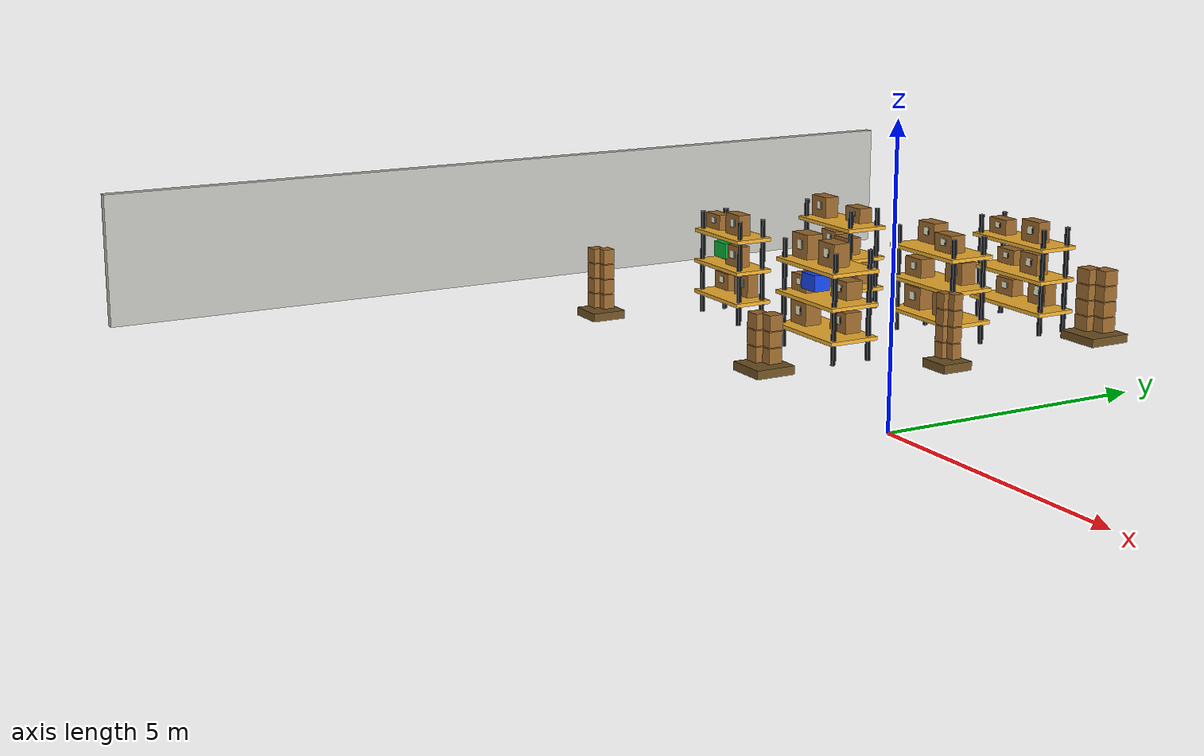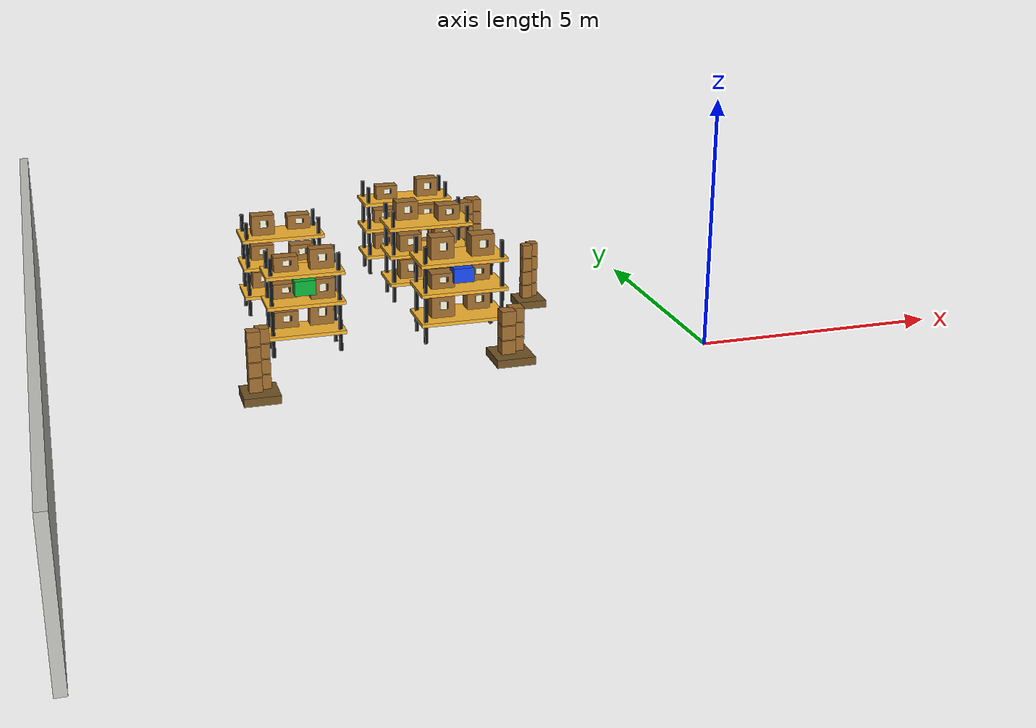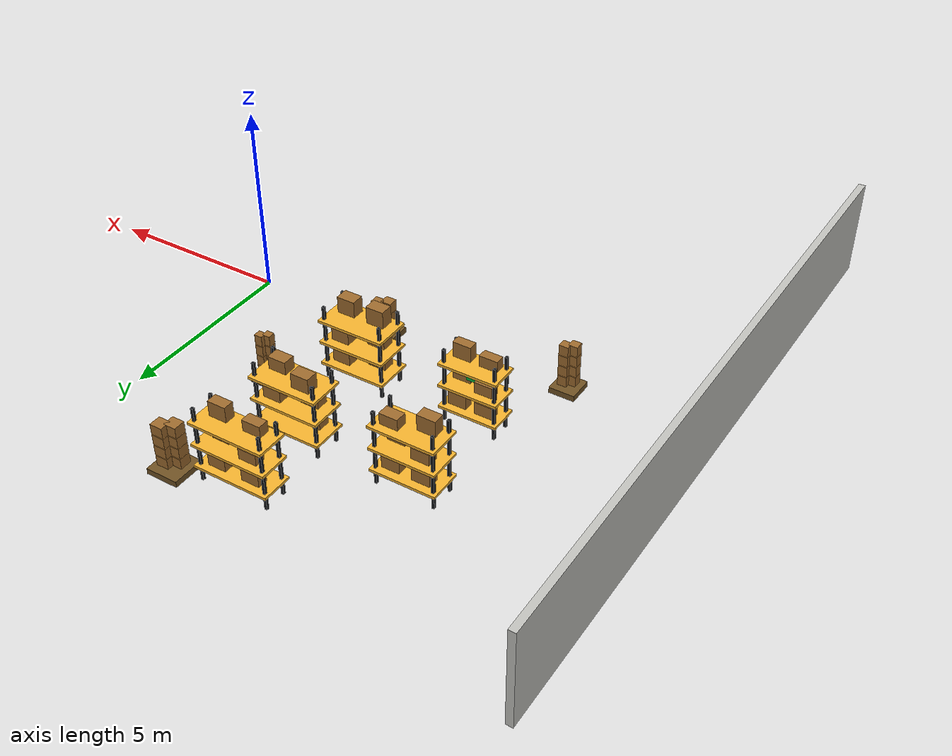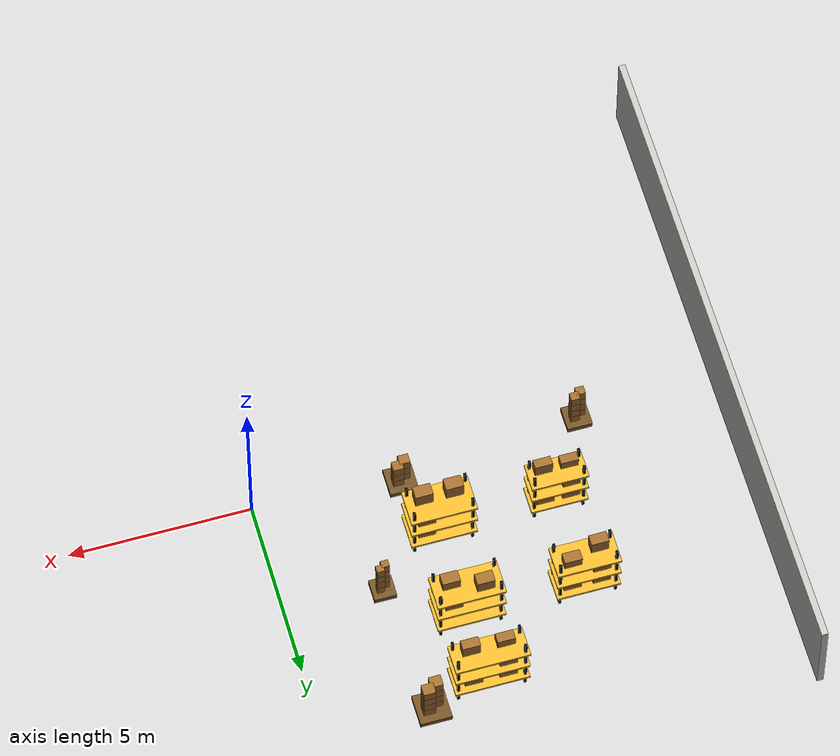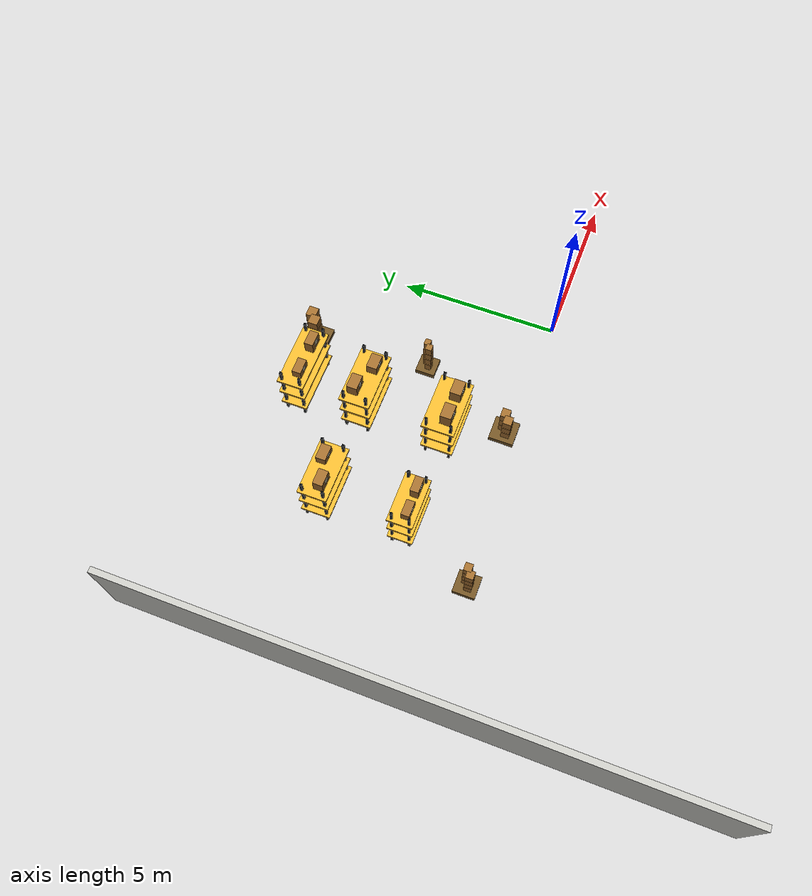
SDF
<sdf version="1.9">
 <world name="lidar_random_warehouse">
  <model name="left_wall">
   <static>true</static>
   <pose>-12.910 0.000 1.300 0 0 0</pose>
   <link name="link">
    <collision name="collision"><geometry><box><size>0.180 18.000 2.600</size></box></geometry></collision>
    <visual name="visual">
     <geometry><box><size>0.180 18.000 2.600</size></box></geometry>
     <material><ambient>0.66 0.66 0.64 1</ambient><diffuse>0.76 0.76 0.74 1</diffuse></material>
    </visual>
   </link>
  </model>
  <model name="shelf_14">
   <static>true</static>
   <pose>-7.800 2.000 0 0 0 0</pose>
   <link name="link">
    <collision name="collision">
     <pose>0 0 1.025 0 0 0</pose>
     <geometry><box><size>1.420 0.597 2.050</size></box></geometry>
    </collision>
    <visual name="post_0">
     <pose>-0.675 -0.264 1.025 0 0 0</pose>
     <geometry><box><size>0.070 0.070 2.050</size></box></geometry>
     <material><ambient>0.03 0.04 0.05 1</ambient><diffuse>0.05 0.06 0.07 1</diffuse></material>
    </visual>
    <visual name="post_1">
     <pose>-0.675 0.264 1.025 0 0 0</pose>
     <geometry><box><size>0.070 0.070 2.050</size></box></geometry>
     <material><ambient>0.03 0.04 0.05 1</ambient><diffuse>0.05 0.06 0.07 1</diffuse></material>
    </visual>
    <visual name="post_2">
     <pose>0.675 -0.264 1.025 0 0 0</pose>
     <geometry><box><size>0.070 0.070 2.050</size></box></geometry>
     <material><ambient>0.03 0.04 0.05 1</ambient><diffuse>0.05 0.06 0.07 1</diffuse></material>
    </visual>
    <visual name="post_3">
     <pose>0.675 0.264 1.025 0 0 0</pose>
     <geometry><box><size>0.070 0.070 2.050</size></box></geometry>
     <material><ambient>0.03 0.04 0.05 1</ambient><diffuse>0.05 0.06 0.07 1</diffuse></material>
    </visual>
    <visual name="deck_1">
     <pose>0.000 0.000 0.420 0 0 0</pose>
     <geometry><box><size>1.560 0.777 0.070</size></box></geometry>
     <material><ambient>0.70 0.52 0.18 1</ambient><diffuse>0.96 0.70 0.18 1</diffuse></material>
    </visual>
    <visual name="box_1_-0.4">
     <pose>-0.355 0.107 0.666 0 0 0</pose>
     <geometry><box><size>0.480 0.251 0.333</size></box></geometry>
     <material><ambient>0.44 0.28 0.11 1</ambient><diffuse>0.62 0.42 0.18 1</diffuse></material>
    </visual>
    <visual name="label_1_-0.4">
     <pose>-0.355 -0.022 0.693 0 0 0</pose>
     <geometry><box><size>0.134 0.012 0.126</size></box></geometry>
     <material><ambient>0.86 0.86 0.76 1</ambient><diffuse>0.98 0.96 0.84 1</diffuse></material>
    </visual>
    <visual name="barcode_1_-0.4">
     <pose>-0.269 -0.026 0.693 0 0 0</pose>
     <geometry><box><size>0.029 0.014 0.113</size></box></geometry>
     <material><ambient>0.02 0.02 0.02 1</ambient><diffuse>0.02 0.02 0.02 1</diffuse></material>
    </visual>
    <visual name="box_1_0.4">
     <pose>0.355 0.107 0.736 0 0 0</pose>
     <geometry><box><size>0.480 0.251 0.472</size></box></geometry>
     <material><ambient>0.44 0.28 0.11 1</ambient><diffuse>0.62 0.42 0.18 1</diffuse></material>
    </visual>
    <visual name="label_1_0.4">
     <pose>0.355 -0.022 0.765 0 0 0</pose>
     <geometry><box><size>0.134 0.012 0.179</size></box></geometry>
     <material><ambient>0.86 0.86 0.76 1</ambient><diffuse>0.98 0.96 0.84 1</diffuse></material>
    </visual>
    <visual name="barcode_1_0.4">
     <pose>0.441 -0.026 0.765 0 0 0</pose>
     <geometry><box><size>0.029 0.014 0.160</size></box></geometry>
     <material><ambient>0.02 0.02 0.02 1</ambient><diffuse>0.02 0.02 0.02 1</diffuse></material>
    </visual>
    <visual name="deck_2">
     <pose>0.000 0.000 1.040 0 0 0</pose>
     <geometry><box><size>1.560 0.777 0.070</size></box></geometry>
     <material><ambient>0.70 0.52 0.18 1</ambient><diffuse>0.96 0.70 0.18 1</diffuse></material>
    </visual>
    <visual name="box_2_-0.4">
     <pose>-0.355 0.107 1.268 0 0 0</pose>
     <geometry><box><size>0.480 0.251 0.295</size></box></geometry>
     <material><ambient>0.44 0.28 0.11 1</ambient><diffuse>0.62 0.42 0.18 1</diffuse></material>
    </visual>
    <visual name="label_2_-0.4">
     <pose>-0.355 -0.022 1.293 0 0 0</pose>
     <geometry><box><size>0.134 0.012 0.112</size></box></geometry>
     <material><ambient>0.86 0.86 0.76 1</ambient><diffuse>0.98 0.96 0.84 1</diffuse></material>
    </visual>
    <visual name="barcode_2_-0.4">
     <pose>-0.269 -0.026 1.293 0 0 0</pose>
     <geometry><box><size>0.029 0.014 0.100</size></box></geometry>
     <material><ambient>0.02 0.02 0.02 1</ambient><diffuse>0.02 0.02 0.02 1</diffuse></material>
    </visual>
    <visual name="box_2_0.4">
     <pose>0.355 -0.107 1.324 0 0 0</pose>
     <geometry><box><size>0.480 0.251 0.407</size></box></geometry>
     <material><ambient>0.44 0.28 0.11 1</ambient><diffuse>0.62 0.42 0.18 1</diffuse></material>
    </visual>
    <visual name="label_2_0.4">
     <pose>0.355 -0.237 1.352 0 0 0</pose>
     <geometry><box><size>0.134 0.012 0.155</size></box></geometry>
     <material><ambient>0.86 0.86 0.76 1</ambient><diffuse>0.98 0.96 0.84 1</diffuse></material>
    </visual>
    <visual name="barcode_2_0.4">
     <pose>0.441 -0.241 1.352 0 0 0</pose>
     <geometry><box><size>0.029 0.014 0.138</size></box></geometry>
     <material><ambient>0.02 0.02 0.02 1</ambient><diffuse>0.02 0.02 0.02 1</diffuse></material>
    </visual>
    <visual name="deck_3">
     <pose>0.000 0.000 1.660 0 0 0</pose>
     <geometry><box><size>1.560 0.777 0.070</size></box></geometry>
     <material><ambient>0.70 0.52 0.18 1</ambient><diffuse>0.96 0.70 0.18 1</diffuse></material>
    </visual>
    <visual name="box_3_-0.4">
     <pose>-0.355 -0.107 1.889 0 0 0</pose>
     <geometry><box><size>0.480 0.251 0.297</size></box></geometry>
     <material><ambient>0.44 0.28 0.11 1</ambient><diffuse>0.62 0.42 0.18 1</diffuse></material>
    </visual>
    <visual name="label_3_-0.4">
     <pose>-0.355 -0.237 1.914 0 0 0</pose>
     <geometry><box><size>0.134 0.012 0.113</size></box></geometry>
     <material><ambient>0.86 0.86 0.76 1</ambient><diffuse>0.98 0.96 0.84 1</diffuse></material>
    </visual>
    <visual name="barcode_3_-0.4">
     <pose>-0.269 -0.241 1.914 0 0 0</pose>
     <geometry><box><size>0.029 0.014 0.101</size></box></geometry>
     <material><ambient>0.02 0.02 0.02 1</ambient><diffuse>0.02 0.02 0.02 1</diffuse></material>
    </visual>
    <visual name="box_3_0.4">
     <pose>0.355 -0.107 1.944 0 0 0</pose>
     <geometry><box><size>0.480 0.251 0.408</size></box></geometry>
     <material><ambient>0.44 0.28 0.11 1</ambient><diffuse>0.62 0.42 0.18 1</diffuse></material>
    </visual>
    <visual name="label_3_0.4">
     <pose>0.355 -0.237 1.972 0 0 0</pose>
     <geometry><box><size>0.134 0.012 0.155</size></box></geometry>
     <material><ambient>0.86 0.86 0.76 1</ambient><diffuse>0.98 0.96 0.84 1</diffuse></material>
    </visual>
    <visual name="barcode_3_0.4">
     <pose>0.441 -0.241 1.972 0 0 0</pose>
     <geometry><box><size>0.029 0.014 0.139</size></box></geometry>
     <material><ambient>0.02 0.02 0.02 1</ambient><diffuse>0.02 0.02 0.02 1</diffuse></material>
    </visual>
   </link>
  </model>
  <model name="shelf_15">
   <static>true</static>
   <pose>-4.600 2.000 0 0 0 0</pose>
   <link name="link">
    <collision name="collision">
     <pose>0 0 1.025 0 0 0</pose>
     <geometry><box><size>1.666 0.830 2.050</size></box></geometry>
    </collision>
    <visual name="post_0">
     <pose>-0.798 -0.380 1.025 0 0 0</pose>
     <geometry><box><size>0.070 0.070 2.050</size></box></geometry>
     <material><ambient>0.03 0.04 0.05 1</ambient><diffuse>0.05 0.06 0.07 1</diffuse></material>
    </visual>
    <visual name="post_1">
     <pose>-0.798 0.380 1.025 0 0 0</pose>
     <geometry><box><size>0.070 0.070 2.050</size></box></geometry>
     <material><ambient>0.03 0.04 0.05 1</ambient><diffuse>0.05 0.06 0.07 1</diffuse></material>
    </visual>
    <visual name="post_2">
     <pose>0.798 -0.380 1.025 0 0 0</pose>
     <geometry><box><size>0.070 0.070 2.050</size></box></geometry>
     <material><ambient>0.03 0.04 0.05 1</ambient><diffuse>0.05 0.06 0.07 1</diffuse></material>
    </visual>
    <visual name="post_3">
     <pose>0.798 0.380 1.025 0 0 0</pose>
     <geometry><box><size>0.070 0.070 2.050</size></box></geometry>
     <material><ambient>0.03 0.04 0.05 1</ambient><diffuse>0.05 0.06 0.07 1</diffuse></material>
    </visual>
    <visual name="deck_1">
     <pose>0.000 0.000 0.420 0 0 0</pose>
     <geometry><box><size>1.806 1.010 0.070</size></box></geometry>
     <material><ambient>0.70 0.52 0.18 1</ambient><diffuse>0.96 0.70 0.18 1</diffuse></material>
    </visual>
    <visual name="box_1_-0.4">
     <pose>-0.417 -0.149 0.728 0 0 0</pose>
     <geometry><box><size>0.480 0.340 0.455</size></box></geometry>
     <material><ambient>0.44 0.28 0.11 1</ambient><diffuse>0.62 0.42 0.18 1</diffuse></material>
    </visual>
    <visual name="label_1_-0.4">
     <pose>-0.417 -0.323 0.757 0 0 0</pose>
     <geometry><box><size>0.134 0.012 0.173</size></box></geometry>
     <material><ambient>0.86 0.86 0.76 1</ambient><diffuse>0.98 0.96 0.84 1</diffuse></material>
    </visual>
    <visual name="barcode_1_-0.4">
     <pose>-0.330 -0.327 0.757 0 0 0</pose>
     <geometry><box><size>0.029 0.014 0.155</size></box></geometry>
     <material><ambient>0.02 0.02 0.02 1</ambient><diffuse>0.02 0.02 0.02 1</diffuse></material>
    </visual>
    <visual name="box_1_0.4">
     <pose>0.417 0.149 0.692 0 0 0</pose>
     <geometry><box><size>0.480 0.340 0.384</size></box></geometry>
     <material><ambient>0.44 0.28 0.11 1</ambient><diffuse>0.62 0.42 0.18 1</diffuse></material>
    </visual>
    <visual name="label_1_0.4">
     <pose>0.417 -0.025 0.720 0 0 0</pose>
     <geometry><box><size>0.134 0.012 0.146</size></box></geometry>
     <material><ambient>0.86 0.86 0.76 1</ambient><diffuse>0.98 0.96 0.84 1</diffuse></material>
    </visual>
    <visual name="barcode_1_0.4">
     <pose>0.503 -0.029 0.720 0 0 0</pose>
     <geometry><box><size>0.029 0.014 0.130</size></box></geometry>
     <material><ambient>0.02 0.02 0.02 1</ambient><diffuse>0.02 0.02 0.02 1</diffuse></material>
    </visual>
    <visual name="deck_2">
     <pose>0.000 0.000 1.040 0 0 0</pose>
     <geometry><box><size>1.806 1.010 0.070</size></box></geometry>
     <material><ambient>0.70 0.52 0.18 1</ambient><diffuse>0.96 0.70 0.18 1</diffuse></material>
    </visual>
    <visual name="box_2_-0.4">
     <pose>-0.417 -0.149 1.276 0 0 0</pose>
     <geometry><box><size>0.480 0.340 0.312</size></box></geometry>
     <material><ambient>0.44 0.28 0.11 1</ambient><diffuse>0.62 0.42 0.18 1</diffuse></material>
    </visual>
    <visual name="label_2_-0.4">
     <pose>-0.417 -0.323 1.302 0 0 0</pose>
     <geometry><box><size>0.134 0.012 0.118</size></box></geometry>
     <material><ambient>0.86 0.86 0.76 1</ambient><diffuse>0.98 0.96 0.84 1</diffuse></material>
    </visual>
    <visual name="barcode_2_-0.4">
     <pose>-0.330 -0.327 1.302 0 0 0</pose>
     <geometry><box><size>0.029 0.014 0.106</size></box></geometry>
     <material><ambient>0.02 0.02 0.02 1</ambient><diffuse>0.02 0.02 0.02 1</diffuse></material>
    </visual>
    <visual name="box_2_0.4">
     <pose>0.417 0.149 1.289 0 0 0</pose>
     <geometry><box><size>0.480 0.340 0.337</size></box></geometry>
     <material><ambient>0.44 0.28 0.11 1</ambient><diffuse>0.62 0.42 0.18 1</diffuse></material>
    </visual>
    <visual name="label_2_0.4">
     <pose>0.417 -0.025 1.315 0 0 0</pose>
     <geometry><box><size>0.134 0.012 0.128</size></box></geometry>
     <material><ambient>0.86 0.86 0.76 1</ambient><diffuse>0.98 0.96 0.84 1</diffuse></material>
    </visual>
    <visual name="barcode_2_0.4">
     <pose>0.503 -0.029 1.315 0 0 0</pose>
     <geometry><box><size>0.029 0.014 0.115</size></box></geometry>
     <material><ambient>0.02 0.02 0.02 1</ambient><diffuse>0.02 0.02 0.02 1</diffuse></material>
    </visual>
    <visual name="deck_3">
     <pose>0.000 0.000 1.660 0 0 0</pose>
     <geometry><box><size>1.806 1.010 0.070</size></box></geometry>
     <material><ambient>0.70 0.52 0.18 1</ambient><diffuse>0.96 0.70 0.18 1</diffuse></material>
    </visual>
    <visual name="box_3_-0.4">
     <pose>-0.417 -0.149 1.969 0 0 0</pose>
     <geometry><box><size>0.480 0.340 0.458</size></box></geometry>
     <material><ambient>0.44 0.28 0.11 1</ambient><diffuse>0.62 0.42 0.18 1</diffuse></material>
    </visual>
    <visual name="label_3_-0.4">
     <pose>-0.417 -0.323 1.998 0 0 0</pose>
     <geometry><box><size>0.134 0.012 0.174</size></box></geometry>
     <material><ambient>0.86 0.86 0.76 1</ambient><diffuse>0.98 0.96 0.84 1</diffuse></material>
    </visual>
    <visual name="barcode_3_-0.4">
     <pose>-0.330 -0.327 1.998 0 0 0</pose>
     <geometry><box><size>0.029 0.014 0.156</size></box></geometry>
     <material><ambient>0.02 0.02 0.02 1</ambient><diffuse>0.02 0.02 0.02 1</diffuse></material>
    </visual>
    <visual name="box_3_0.4">
     <pose>0.417 -0.149 1.958 0 0 0</pose>
     <geometry><box><size>0.480 0.340 0.436</size></box></geometry>
     <material><ambient>0.44 0.28 0.11 1</ambient><diffuse>0.62 0.42 0.18 1</diffuse></material>
    </visual>
    <visual name="label_3_0.4">
     <pose>0.417 -0.323 1.987 0 0 0</pose>
     <geometry><box><size>0.134 0.012 0.166</size></box></geometry>
     <material><ambient>0.86 0.86 0.76 1</ambient><diffuse>0.98 0.96 0.84 1</diffuse></material>
    </visual>
    <visual name="barcode_3_0.4">
     <pose>0.503 -0.327 1.987 0 0 0</pose>
     <geometry><box><size>0.029 0.014 0.148</size></box></geometry>
     <material><ambient>0.02 0.02 0.02 1</ambient><diffuse>0.02 0.02 0.02 1</diffuse></material>
    </visual>
   </link>
  </model>
  <model name="shelf_18">
   <static>true</static>
   <pose>-7.800 4.600 0 0 0 0</pose>
   <link name="link">
    <collision name="collision">
     <pose>0 0 1.025 0 0 0</pose>
     <geometry><box><size>1.598 0.715 2.050</size></box></geometry>
    </collision>
    <visual name="post_0">
     <pose>-0.764 -0.322 1.025 0 0 0</pose>
     <geometry><box><size>0.070 0.070 2.050</size></box></geometry>
     <material><ambient>0.03 0.04 0.05 1</ambient><diffuse>0.05 0.06 0.07 1</diffuse></material>
    </visual>
    <visual name="post_1">
     <pose>-0.764 0.322 1.025 0 0 0</pose>
     <geometry><box><size>0.070 0.070 2.050</size></box></geometry>
     <material><ambient>0.03 0.04 0.05 1</ambient><diffuse>0.05 0.06 0.07 1</diffuse></material>
    </visual>
    <visual name="post_2">
     <pose>0.764 -0.322 1.025 0 0 0</pose>
     <geometry><box><size>0.070 0.070 2.050</size></box></geometry>
     <material><ambient>0.03 0.04 0.05 1</ambient><diffuse>0.05 0.06 0.07 1</diffuse></material>
    </visual>
    <visual name="post_3">
     <pose>0.764 0.322 1.025 0 0 0</pose>
     <geometry><box><size>0.070 0.070 2.050</size></box></geometry>
     <material><ambient>0.03 0.04 0.05 1</ambient><diffuse>0.05 0.06 0.07 1</diffuse></material>
    </visual>
    <visual name="deck_1">
     <pose>0.000 0.000 0.420 0 0 0</pose>
     <geometry><box><size>1.738 0.895 0.070</size></box></geometry>
     <material><ambient>0.70 0.52 0.18 1</ambient><diffuse>0.96 0.70 0.18 1</diffuse></material>
    </visual>
    <visual name="box_1_-0.4">
     <pose>-0.399 0.129 0.670 0 0 0</pose>
     <geometry><box><size>0.480 0.300 0.341</size></box></geometry>
     <material><ambient>0.44 0.28 0.11 1</ambient><diffuse>0.62 0.42 0.18 1</diffuse></material>
    </visual>
    <visual name="label_1_-0.4">
     <pose>-0.399 -0.025 0.697 0 0 0</pose>
     <geometry><box><size>0.134 0.012 0.129</size></box></geometry>
     <material><ambient>0.86 0.86 0.76 1</ambient><diffuse>0.98 0.96 0.84 1</diffuse></material>
    </visual>
    <visual name="barcode_1_-0.4">
     <pose>-0.313 -0.029 0.697 0 0 0</pose>
     <geometry><box><size>0.029 0.014 0.116</size></box></geometry>
     <material><ambient>0.02 0.02 0.02 1</ambient><diffuse>0.02 0.02 0.02 1</diffuse></material>
    </visual>
    <visual name="box_1_0.4">
     <pose>0.399 0.129 0.737 0 0 0</pose>
     <geometry><box><size>0.480 0.300 0.474</size></box></geometry>
     <material><ambient>0.44 0.28 0.11 1</ambient><diffuse>0.62 0.42 0.18 1</diffuse></material>
    </visual>
    <visual name="label_1_0.4">
     <pose>0.399 -0.025 0.766 0 0 0</pose>
     <geometry><box><size>0.134 0.012 0.180</size></box></geometry>
     <material><ambient>0.86 0.86 0.76 1</ambient><diffuse>0.98 0.96 0.84 1</diffuse></material>
    </visual>
    <visual name="barcode_1_0.4">
     <pose>0.486 -0.029 0.766 0 0 0</pose>
     <geometry><box><size>0.029 0.014 0.161</size></box></geometry>
     <material><ambient>0.02 0.02 0.02 1</ambient><diffuse>0.02 0.02 0.02 1</diffuse></material>
    </visual>
    <visual name="deck_2">
     <pose>0.000 0.000 1.040 0 0 0</pose>
     <geometry><box><size>1.738 0.895 0.070</size></box></geometry>
     <material><ambient>0.70 0.52 0.18 1</ambient><diffuse>0.96 0.70 0.18 1</diffuse></material>
    </visual>
    <visual name="box_2_-0.4">
     <pose>-0.399 0.129 1.276 0 0 0</pose>
     <geometry><box><size>0.480 0.300 0.312</size></box></geometry>
     <material><ambient>0.44 0.28 0.11 1</ambient><diffuse>0.62 0.42 0.18 1</diffuse></material>
    </visual>
    <visual name="label_2_-0.4">
     <pose>-0.399 -0.025 1.302 0 0 0</pose>
     <geometry><box><size>0.134 0.012 0.118</size></box></geometry>
     <material><ambient>0.86 0.86 0.76 1</ambient><diffuse>0.98 0.96 0.84 1</diffuse></material>
    </visual>
    <visual name="barcode_2_-0.4">
     <pose>-0.313 -0.029 1.302 0 0 0</pose>
     <geometry><box><size>0.029 0.014 0.106</size></box></geometry>
     <material><ambient>0.02 0.02 0.02 1</ambient><diffuse>0.02 0.02 0.02 1</diffuse></material>
    </visual>
    <visual name="box_2_0.4">
     <pose>0.399 -0.129 1.289 0 0 0</pose>
     <geometry><box><size>0.480 0.300 0.338</size></box></geometry>
     <material><ambient>0.44 0.28 0.11 1</ambient><diffuse>0.62 0.42 0.18 1</diffuse></material>
    </visual>
    <visual name="label_2_0.4">
     <pose>0.399 -0.283 1.316 0 0 0</pose>
     <geometry><box><size>0.134 0.012 0.128</size></box></geometry>
     <material><ambient>0.86 0.86 0.76 1</ambient><diffuse>0.98 0.96 0.84 1</diffuse></material>
    </visual>
    <visual name="barcode_2_0.4">
     <pose>0.486 -0.287 1.316 0 0 0</pose>
     <geometry><box><size>0.029 0.014 0.115</size></box></geometry>
     <material><ambient>0.02 0.02 0.02 1</ambient><diffuse>0.02 0.02 0.02 1</diffuse></material>
    </visual>
    <visual name="deck_3">
     <pose>0.000 0.000 1.660 0 0 0</pose>
     <geometry><box><size>1.738 0.895 0.070</size></box></geometry>
     <material><ambient>0.70 0.52 0.18 1</ambient><diffuse>0.96 0.70 0.18 1</diffuse></material>
    </visual>
    <visual name="box_3_-0.4">
     <pose>-0.399 -0.129 1.951 0 0 0</pose>
     <geometry><box><size>0.480 0.300 0.422</size></box></geometry>
     <material><ambient>0.44 0.28 0.11 1</ambient><diffuse>0.62 0.42 0.18 1</diffuse></material>
    </visual>
    <visual name="label_3_-0.4">
     <pose>-0.399 -0.283 1.979 0 0 0</pose>
     <geometry><box><size>0.134 0.012 0.160</size></box></geometry>
     <material><ambient>0.86 0.86 0.76 1</ambient><diffuse>0.98 0.96 0.84 1</diffuse></material>
    </visual>
    <visual name="barcode_3_-0.4">
     <pose>-0.313 -0.287 1.979 0 0 0</pose>
     <geometry><box><size>0.029 0.014 0.143</size></box></geometry>
     <material><ambient>0.02 0.02 0.02 1</ambient><diffuse>0.02 0.02 0.02 1</diffuse></material>
    </visual>
    <visual name="box_3_0.4">
     <pose>0.399 0.129 1.889 0 0 0</pose>
     <geometry><box><size>0.480 0.300 0.297</size></box></geometry>
     <material><ambient>0.44 0.28 0.11 1</ambient><diffuse>0.62 0.42 0.18 1</diffuse></material>
    </visual>
    <visual name="label_3_0.4">
     <pose>0.399 -0.025 1.915 0 0 0</pose>
     <geometry><box><size>0.134 0.012 0.113</size></box></geometry>
     <material><ambient>0.86 0.86 0.76 1</ambient><diffuse>0.98 0.96 0.84 1</diffuse></material>
    </visual>
    <visual name="barcode_3_0.4">
     <pose>0.486 -0.029 1.915 0 0 0</pose>
     <geometry><box><size>0.029 0.014 0.101</size></box></geometry>
     <material><ambient>0.02 0.02 0.02 1</ambient><diffuse>0.02 0.02 0.02 1</diffuse></material>
    </visual>
   </link>
  </model>
  <model name="shelf_19">
   <static>true</static>
   <pose>-4.600 4.600 0 0 0 0</pose>
   <link name="link">
    <collision name="collision">
     <pose>0 0 1.025 0 0 0</pose>
     <geometry><box><size>1.716 0.774 2.050</size></box></geometry>
    </collision>
    <visual name="post_0">
     <pose>-0.823 -0.352 1.025 0 0 0</pose>
     <geometry><box><size>0.070 0.070 2.050</size></box></geometry>
     <material><ambient>0.03 0.04 0.05 1</ambient><diffuse>0.05 0.06 0.07 1</diffuse></material>
    </visual>
    <visual name="post_1">
     <pose>-0.823 0.352 1.025 0 0 0</pose>
     <geometry><box><size>0.070 0.070 2.050</size></box></geometry>
     <material><ambient>0.03 0.04 0.05 1</ambient><diffuse>0.05 0.06 0.07 1</diffuse></material>
    </visual>
    <visual name="post_2">
     <pose>0.823 -0.352 1.025 0 0 0</pose>
     <geometry><box><size>0.070 0.070 2.050</size></box></geometry>
     <material><ambient>0.03 0.04 0.05 1</ambient><diffuse>0.05 0.06 0.07 1</diffuse></material>
    </visual>
    <visual name="post_3">
     <pose>0.823 0.352 1.025 0 0 0</pose>
     <geometry><box><size>0.070 0.070 2.050</size></box></geometry>
     <material><ambient>0.03 0.04 0.05 1</ambient><diffuse>0.05 0.06 0.07 1</diffuse></material>
    </visual>
    <visual name="deck_1">
     <pose>0.000 0.000 0.420 0 0 0</pose>
     <geometry><box><size>1.856 0.954 0.070</size></box></geometry>
     <material><ambient>0.70 0.52 0.18 1</ambient><diffuse>0.96 0.70 0.18 1</diffuse></material>
    </visual>
    <visual name="box_1_-0.4">
     <pose>-0.429 -0.139 0.712 0 0 0</pose>
     <geometry><box><size>0.480 0.325 0.424</size></box></geometry>
     <material><ambient>0.44 0.28 0.11 1</ambient><diffuse>0.62 0.42 0.18 1</diffuse></material>
    </visual>
    <visual name="label_1_-0.4">
     <pose>-0.429 -0.306 0.741 0 0 0</pose>
     <geometry><box><size>0.134 0.012 0.161</size></box></geometry>
     <material><ambient>0.86 0.86 0.76 1</ambient><diffuse>0.98 0.96 0.84 1</diffuse></material>
    </visual>
    <visual name="barcode_1_-0.4">
     <pose>-0.342 -0.310 0.741 0 0 0</pose>
     <geometry><box><size>0.029 0.014 0.144</size></box></geometry>
     <material><ambient>0.02 0.02 0.02 1</ambient><diffuse>0.02 0.02 0.02 1</diffuse></material>
    </visual>
    <visual name="box_1_0.4">
     <pose>0.429 -0.139 0.740 0 0 0</pose>
     <geometry><box><size>0.480 0.325 0.479</size></box></geometry>
     <material><ambient>0.44 0.28 0.11 1</ambient><diffuse>0.62 0.42 0.18 1</diffuse></material>
    </visual>
    <visual name="label_1_0.4">
     <pose>0.429 -0.306 0.769 0 0 0</pose>
     <geometry><box><size>0.134 0.012 0.182</size></box></geometry>
     <material><ambient>0.86 0.86 0.76 1</ambient><diffuse>0.98 0.96 0.84 1</diffuse></material>
    </visual>
    <visual name="barcode_1_0.4">
     <pose>0.515 -0.310 0.769 0 0 0</pose>
     <geometry><box><size>0.029 0.014 0.163</size></box></geometry>
     <material><ambient>0.02 0.02 0.02 1</ambient><diffuse>0.02 0.02 0.02 1</diffuse></material>
    </visual>
    <visual name="deck_2">
     <pose>0.000 0.000 1.040 0 0 0</pose>
     <geometry><box><size>1.856 0.954 0.070</size></box></geometry>
     <material><ambient>0.70 0.52 0.18 1</ambient><diffuse>0.96 0.70 0.18 1</diffuse></material>
    </visual>
    <visual name="box_2_-0.4">
     <pose>-0.429 -0.139 1.299 0 0 0</pose>
     <geometry><box><size>0.480 0.325 0.358</size></box></geometry>
     <material><ambient>0.44 0.28 0.11 1</ambient><diffuse>0.62 0.42 0.18 1</diffuse></material>
    </visual>
    <visual name="label_2_-0.4">
     <pose>-0.429 -0.306 1.326 0 0 0</pose>
     <geometry><box><size>0.134 0.012 0.136</size></box></geometry>
     <material><ambient>0.86 0.86 0.76 1</ambient><diffuse>0.98 0.96 0.84 1</diffuse></material>
    </visual>
    <visual name="barcode_2_-0.4">
     <pose>-0.342 -0.310 1.326 0 0 0</pose>
     <geometry><box><size>0.029 0.014 0.122</size></box></geometry>
     <material><ambient>0.02 0.02 0.02 1</ambient><diffuse>0.02 0.02 0.02 1</diffuse></material>
    </visual>
    <visual name="box_2_0.4">
     <pose>0.429 0.139 1.328 0 0 0</pose>
     <geometry><box><size>0.480 0.325 0.417</size></box></geometry>
     <material><ambient>0.44 0.28 0.11 1</ambient><diffuse>0.62 0.42 0.18 1</diffuse></material>
    </visual>
    <visual name="label_2_0.4">
     <pose>0.429 -0.027 1.357 0 0 0</pose>
     <geometry><box><size>0.134 0.012 0.158</size></box></geometry>
     <material><ambient>0.86 0.86 0.76 1</ambient><diffuse>0.98 0.96 0.84 1</diffuse></material>
    </visual>
    <visual name="barcode_2_0.4">
     <pose>0.515 -0.031 1.357 0 0 0</pose>
     <geometry><box><size>0.029 0.014 0.142</size></box></geometry>
     <material><ambient>0.02 0.02 0.02 1</ambient><diffuse>0.02 0.02 0.02 1</diffuse></material>
    </visual>
    <visual name="deck_3">
     <pose>0.000 0.000 1.660 0 0 0</pose>
     <geometry><box><size>1.856 0.954 0.070</size></box></geometry>
     <material><ambient>0.70 0.52 0.18 1</ambient><diffuse>0.96 0.70 0.18 1</diffuse></material>
    </visual>
    <visual name="box_3_-0.4">
     <pose>-0.429 0.139 1.939 0 0 0</pose>
     <geometry><box><size>0.480 0.325 0.397</size></box></geometry>
     <material><ambient>0.44 0.28 0.11 1</ambient><diffuse>0.62 0.42 0.18 1</diffuse></material>
    </visual>
    <visual name="label_3_-0.4">
     <pose>-0.429 -0.027 1.966 0 0 0</pose>
     <geometry><box><size>0.134 0.012 0.151</size></box></geometry>
     <material><ambient>0.86 0.86 0.76 1</ambient><diffuse>0.98 0.96 0.84 1</diffuse></material>
    </visual>
    <visual name="barcode_3_-0.4">
     <pose>-0.342 -0.031 1.966 0 0 0</pose>
     <geometry><box><size>0.029 0.014 0.135</size></box></geometry>
     <material><ambient>0.02 0.02 0.02 1</ambient><diffuse>0.02 0.02 0.02 1</diffuse></material>
    </visual>
    <visual name="box_3_0.4">
     <pose>0.429 -0.139 1.908 0 0 0</pose>
     <geometry><box><size>0.480 0.325 0.335</size></box></geometry>
     <material><ambient>0.44 0.28 0.11 1</ambient><diffuse>0.62 0.42 0.18 1</diffuse></material>
    </visual>
    <visual name="label_3_0.4">
     <pose>0.429 -0.306 1.934 0 0 0</pose>
     <geometry><box><size>0.134 0.012 0.127</size></box></geometry>
     <material><ambient>0.86 0.86 0.76 1</ambient><diffuse>0.98 0.96 0.84 1</diffuse></material>
    </visual>
    <visual name="barcode_3_0.4">
     <pose>0.515 -0.310 1.934 0 0 0</pose>
     <geometry><box><size>0.029 0.014 0.114</size></box></geometry>
     <material><ambient>0.02 0.02 0.02 1</ambient><diffuse>0.02 0.02 0.02 1</diffuse></material>
    </visual>
   </link>
  </model>
  <model name="shelf_23">
   <static>true</static>
   <pose>-4.600 6.600 0 0 0 0</pose>
   <link name="link">
    <collision name="collision">
     <pose>0 0 1.025 0 0 0</pose>
     <geometry><box><size>1.878 0.648 2.050</size></box></geometry>
    </collision>
    <visual name="post_0">
     <pose>-0.904 -0.289 1.025 0 0 0</pose>
     <geometry><box><size>0.070 0.070 2.050</size></box></geometry>
     <material><ambient>0.03 0.04 0.05 1</ambient><diffuse>0.05 0.06 0.07 1</diffuse></material>
    </visual>
    <visual name="post_1">
     <pose>-0.904 0.289 1.025 0 0 0</pose>
     <geometry><box><size>0.070 0.070 2.050</size></box></geometry>
     <material><ambient>0.03 0.04 0.05 1</ambient><diffuse>0.05 0.06 0.07 1</diffuse></material>
    </visual>
    <visual name="post_2">
     <pose>0.904 -0.289 1.025 0 0 0</pose>
     <geometry><box><size>0.070 0.070 2.050</size></box></geometry>
     <material><ambient>0.03 0.04 0.05 1</ambient><diffuse>0.05 0.06 0.07 1</diffuse></material>
    </visual>
    <visual name="post_3">
     <pose>0.904 0.289 1.025 0 0 0</pose>
     <geometry><box><size>0.070 0.070 2.050</size></box></geometry>
     <material><ambient>0.03 0.04 0.05 1</ambient><diffuse>0.05 0.06 0.07 1</diffuse></material>
    </visual>
    <visual name="deck_1">
     <pose>0.000 0.000 0.420 0 0 0</pose>
     <geometry><box><size>2.018 0.828 0.070</size></box></geometry>
     <material><ambient>0.70 0.52 0.18 1</ambient><diffuse>0.96 0.70 0.18 1</diffuse></material>
    </visual>
    <visual name="box_1_-0.5">
     <pose>-0.469 0.117 0.666 0 0 0</pose>
     <geometry><box><size>0.480 0.272 0.333</size></box></geometry>
     <material><ambient>0.44 0.28 0.11 1</ambient><diffuse>0.62 0.42 0.18 1</diffuse></material>
    </visual>
    <visual name="label_1_-0.5">
     <pose>-0.469 -0.023 0.693 0 0 0</pose>
     <geometry><box><size>0.134 0.012 0.126</size></box></geometry>
     <material><ambient>0.86 0.86 0.76 1</ambient><diffuse>0.98 0.96 0.84 1</diffuse></material>
    </visual>
    <visual name="barcode_1_-0.5">
     <pose>-0.383 -0.027 0.693 0 0 0</pose>
     <geometry><box><size>0.029 0.014 0.113</size></box></geometry>
     <material><ambient>0.02 0.02 0.02 1</ambient><diffuse>0.02 0.02 0.02 1</diffuse></material>
    </visual>
    <visual name="box_1_0.5">
     <pose>0.469 0.117 0.736 0 0 0</pose>
     <geometry><box><size>0.480 0.272 0.472</size></box></geometry>
     <material><ambient>0.44 0.28 0.11 1</ambient><diffuse>0.62 0.42 0.18 1</diffuse></material>
    </visual>
    <visual name="label_1_0.5">
     <pose>0.469 -0.023 0.765 0 0 0</pose>
     <geometry><box><size>0.134 0.012 0.179</size></box></geometry>
     <material><ambient>0.86 0.86 0.76 1</ambient><diffuse>0.98 0.96 0.84 1</diffuse></material>
    </visual>
    <visual name="barcode_1_0.5">
     <pose>0.556 -0.027 0.765 0 0 0</pose>
     <geometry><box><size>0.029 0.014 0.160</size></box></geometry>
     <material><ambient>0.02 0.02 0.02 1</ambient><diffuse>0.02 0.02 0.02 1</diffuse></material>
    </visual>
    <visual name="deck_2">
     <pose>0.000 0.000 1.040 0 0 0</pose>
     <geometry><box><size>2.018 0.828 0.070</size></box></geometry>
     <material><ambient>0.70 0.52 0.18 1</ambient><diffuse>0.96 0.70 0.18 1</diffuse></material>
    </visual>
    <visual name="box_2_-0.5">
     <pose>-0.469 0.117 1.268 0 0 0</pose>
     <geometry><box><size>0.480 0.272 0.295</size></box></geometry>
     <material><ambient>0.44 0.28 0.11 1</ambient><diffuse>0.62 0.42 0.18 1</diffuse></material>
    </visual>
    <visual name="label_2_-0.5">
     <pose>-0.469 -0.023 1.293 0 0 0</pose>
     <geometry><box><size>0.134 0.012 0.112</size></box></geometry>
     <material><ambient>0.86 0.86 0.76 1</ambient><diffuse>0.98 0.96 0.84 1</diffuse></material>
    </visual>
    <visual name="barcode_2_-0.5">
     <pose>-0.383 -0.027 1.293 0 0 0</pose>
     <geometry><box><size>0.029 0.014 0.100</size></box></geometry>
     <material><ambient>0.02 0.02 0.02 1</ambient><diffuse>0.02 0.02 0.02 1</diffuse></material>
    </visual>
    <visual name="box_2_0.5">
     <pose>0.469 -0.117 1.324 0 0 0</pose>
     <geometry><box><size>0.480 0.272 0.407</size></box></geometry>
     <material><ambient>0.44 0.28 0.11 1</ambient><diffuse>0.62 0.42 0.18 1</diffuse></material>
    </visual>
    <visual name="label_2_0.5">
     <pose>0.469 -0.257 1.352 0 0 0</pose>
     <geometry><box><size>0.134 0.012 0.155</size></box></geometry>
     <material><ambient>0.86 0.86 0.76 1</ambient><diffuse>0.98 0.96 0.84 1</diffuse></material>
    </visual>
    <visual name="barcode_2_0.5">
     <pose>0.556 -0.261 1.352 0 0 0</pose>
     <geometry><box><size>0.029 0.014 0.138</size></box></geometry>
     <material><ambient>0.02 0.02 0.02 1</ambient><diffuse>0.02 0.02 0.02 1</diffuse></material>
    </visual>
    <visual name="deck_3">
     <pose>0.000 0.000 1.660 0 0 0</pose>
     <geometry><box><size>2.018 0.828 0.070</size></box></geometry>
     <material><ambient>0.70 0.52 0.18 1</ambient><diffuse>0.96 0.70 0.18 1</diffuse></material>
    </visual>
    <visual name="box_3_-0.5">
     <pose>-0.469 -0.117 1.889 0 0 0</pose>
     <geometry><box><size>0.480 0.272 0.297</size></box></geometry>
     <material><ambient>0.44 0.28 0.11 1</ambient><diffuse>0.62 0.42 0.18 1</diffuse></material>
    </visual>
    <visual name="label_3_-0.5">
     <pose>-0.469 -0.257 1.914 0 0 0</pose>
     <geometry><box><size>0.134 0.012 0.113</size></box></geometry>
     <material><ambient>0.86 0.86 0.76 1</ambient><diffuse>0.98 0.96 0.84 1</diffuse></material>
    </visual>
    <visual name="barcode_3_-0.5">
     <pose>-0.383 -0.261 1.914 0 0 0</pose>
     <geometry><box><size>0.029 0.014 0.101</size></box></geometry>
     <material><ambient>0.02 0.02 0.02 1</ambient><diffuse>0.02 0.02 0.02 1</diffuse></material>
    </visual>
    <visual name="box_3_0.5">
     <pose>0.469 -0.117 1.944 0 0 0</pose>
     <geometry><box><size>0.480 0.272 0.408</size></box></geometry>
     <material><ambient>0.44 0.28 0.11 1</ambient><diffuse>0.62 0.42 0.18 1</diffuse></material>
    </visual>
    <visual name="label_3_0.5">
     <pose>0.469 -0.257 1.972 0 0 0</pose>
     <geometry><box><size>0.134 0.012 0.155</size></box></geometry>
     <material><ambient>0.86 0.86 0.76 1</ambient><diffuse>0.98 0.96 0.84 1</diffuse></material>
    </visual>
    <visual name="barcode_3_0.5">
     <pose>0.556 -0.261 1.972 0 0 0</pose>
     <geometry><box><size>0.029 0.014 0.139</size></box></geometry>
     <material><ambient>0.02 0.02 0.02 1</ambient><diffuse>0.02 0.02 0.02 1</diffuse></material>
    </visual>
   </link>
  </model>
  <model name="pallet_stack_6">
   <static>true</static>
   <pose>-2.672 3.296 0 0 0 0</pose>
   <link name="link">
    <collision name="collision">
     <pose>0 0 0.55 0 0 0</pose>
     <geometry><box><size>0.612 0.612 1.10</size></box></geometry>
    </collision>
    <visual name="pallet">
     <pose>0.000 0.000 0.080 0 0 0</pose>
     <geometry><box><size>0.612 0.612 0.160</size></box></geometry>
     <material><ambient>0.30 0.21 0.10 1</ambient><diffuse>0.44 0.32 0.14 1</diffuse></material>
    </visual>
    <visual name="case_0_a">
     <pose>-0.078 -0.052 0.340 0 0 0</pose>
     <geometry><box><size>0.207 0.194 0.280</size></box></geometry>
     <material><ambient>0.44 0.28 0.11 1</ambient><diffuse>0.62 0.42 0.18 1</diffuse></material>
    </visual>
    <visual name="case_0_b">
     <pose>0.078 0.052 0.340 0 0 0</pose>
     <geometry><box><size>0.207 0.194 0.280</size></box></geometry>
     <material><ambient>0.44 0.28 0.11 1</ambient><diffuse>0.62 0.42 0.18 1</diffuse></material>
    </visual>
    <visual name="case_1_a">
     <pose>-0.078 -0.052 0.640 0 0 0</pose>
     <geometry><box><size>0.207 0.194 0.280</size></box></geometry>
     <material><ambient>0.44 0.28 0.11 1</ambient><diffuse>0.62 0.42 0.18 1</diffuse></material>
    </visual>
    <visual name="case_1_b">
     <pose>0.078 0.052 0.640 0 0 0</pose>
     <geometry><box><size>0.207 0.194 0.280</size></box></geometry>
     <material><ambient>0.44 0.28 0.11 1</ambient><diffuse>0.62 0.42 0.18 1</diffuse></material>
    </visual>
    <visual name="case_2_a">
     <pose>-0.078 -0.052 0.940 0 0 0</pose>
     <geometry><box><size>0.207 0.194 0.280</size></box></geometry>
     <material><ambient>0.44 0.28 0.11 1</ambient><diffuse>0.62 0.42 0.18 1</diffuse></material>
    </visual>
    <visual name="case_2_b">
     <pose>0.078 0.052 0.940 0 0 0</pose>
     <geometry><box><size>0.207 0.194 0.280</size></box></geometry>
     <material><ambient>0.44 0.28 0.11 1</ambient><diffuse>0.62 0.42 0.18 1</diffuse></material>
    </visual>
    <visual name="case_3_a">
     <pose>-0.078 -0.052 1.240 0 0 0</pose>
     <geometry><box><size>0.207 0.194 0.280</size></box></geometry>
     <material><ambient>0.44 0.28 0.11 1</ambient><diffuse>0.62 0.42 0.18 1</diffuse></material>
    </visual>
    <visual name="case_3_b">
     <pose>0.078 0.052 1.240 0 0 0</pose>
     <geometry><box><size>0.207 0.194 0.280</size></box></geometry>
     <material><ambient>0.44 0.28 0.11 1</ambient><diffuse>0.62 0.42 0.18 1</diffuse></material>
    </visual>
   </link>
  </model>
  <model name="pallet_stack_9">
   <static>true</static>
   <pose>-4.023 0.296 0 0 0 0</pose>
   <link name="link">
    <collision name="collision">
     <pose>0 0 0.55 0 0 0</pose>
     <geometry><box><size>0.775 0.775 1.10</size></box></geometry>
    </collision>
    <visual name="pallet">
     <pose>0.000 0.000 0.080 0 0 0</pose>
     <geometry><box><size>0.775 0.775 0.160</size></box></geometry>
     <material><ambient>0.30 0.21 0.10 1</ambient><diffuse>0.44 0.32 0.14 1</diffuse></material>
    </visual>
    <visual name="case_0_a">
     <pose>-0.107 -0.071 0.340 0 0 0</pose>
     <geometry><box><size>0.286 0.268 0.280</size></box></geometry>
     <material><ambient>0.44 0.28 0.11 1</ambient><diffuse>0.62 0.42 0.18 1</diffuse></material>
    </visual>
    <visual name="case_0_b">
     <pose>0.107 0.071 0.340 0 0 0</pose>
     <geometry><box><size>0.286 0.268 0.280</size></box></geometry>
     <material><ambient>0.44 0.28 0.11 1</ambient><diffuse>0.62 0.42 0.18 1</diffuse></material>
    </visual>
    <visual name="case_1_a">
     <pose>-0.107 -0.071 0.640 0 0 0</pose>
     <geometry><box><size>0.286 0.268 0.280</size></box></geometry>
     <material><ambient>0.44 0.28 0.11 1</ambient><diffuse>0.62 0.42 0.18 1</diffuse></material>
    </visual>
    <visual name="case_1_b">
     <pose>0.107 0.071 0.640 0 0 0</pose>
     <geometry><box><size>0.286 0.268 0.280</size></box></geometry>
     <material><ambient>0.44 0.28 0.11 1</ambient><diffuse>0.62 0.42 0.18 1</diffuse></material>
    </visual>
    <visual name="case_2_a">
     <pose>-0.107 -0.071 0.940 0 0 0</pose>
     <geometry><box><size>0.286 0.268 0.280</size></box></geometry>
     <material><ambient>0.44 0.28 0.11 1</ambient><diffuse>0.62 0.42 0.18 1</diffuse></material>
    </visual>
    <visual name="case_2_b">
     <pose>0.107 0.071 0.940 0 0 0</pose>
     <geometry><box><size>0.286 0.268 0.280</size></box></geometry>
     <material><ambient>0.44 0.28 0.11 1</ambient><diffuse>0.62 0.42 0.18 1</diffuse></material>
    </visual>
   </link>
  </model>
  <model name="pallet_stack_10">
   <static>true</static>
   <pose>-9.053 -0.252 0 0 0 0</pose>
   <link name="link">
    <collision name="collision">
     <pose>0 0 0.55 0 0 0</pose>
     <geometry><box><size>0.689 0.689 1.10</size></box></geometry>
    </collision>
    <visual name="pallet">
     <pose>0.000 0.000 0.080 0 0 0</pose>
     <geometry><box><size>0.689 0.689 0.160</size></box></geometry>
     <material><ambient>0.30 0.21 0.10 1</ambient><diffuse>0.44 0.32 0.14 1</diffuse></material>
    </visual>
    <visual name="case_0_a">
     <pose>-0.092 -0.061 0.340 0 0 0</pose>
     <geometry><box><size>0.244 0.229 0.280</size></box></geometry>
     <material><ambient>0.44 0.28 0.11 1</ambient><diffuse>0.62 0.42 0.18 1</diffuse></material>
    </visual>
    <visual name="case_0_b">
     <pose>0.092 0.061 0.340 0 0 0</pose>
     <geometry><box><size>0.244 0.229 0.280</size></box></geometry>
     <material><ambient>0.44 0.28 0.11 1</ambient><diffuse>0.62 0.42 0.18 1</diffuse></material>
    </visual>
    <visual name="case_1_a">
     <pose>-0.092 -0.061 0.640 0 0 0</pose>
     <geometry><box><size>0.244 0.229 0.280</size></box></geometry>
     <material><ambient>0.44 0.28 0.11 1</ambient><diffuse>0.62 0.42 0.18 1</diffuse></material>
    </visual>
    <visual name="case_1_b">
     <pose>0.092 0.061 0.640 0 0 0</pose>
     <geometry><box><size>0.244 0.229 0.280</size></box></geometry>
     <material><ambient>0.44 0.28 0.11 1</ambient><diffuse>0.62 0.42 0.18 1</diffuse></material>
    </visual>
    <visual name="case_2_a">
     <pose>-0.092 -0.061 0.940 0 0 0</pose>
     <geometry><box><size>0.244 0.229 0.280</size></box></geometry>
     <material><ambient>0.44 0.28 0.11 1</ambient><diffuse>0.62 0.42 0.18 1</diffuse></material>
    </visual>
    <visual name="case_2_b">
     <pose>0.092 0.061 0.940 0 0 0</pose>
     <geometry><box><size>0.244 0.229 0.280</size></box></geometry>
     <material><ambient>0.44 0.28 0.11 1</ambient><diffuse>0.62 0.42 0.18 1</diffuse></material>
    </visual>
    <visual name="case_3_a">
     <pose>-0.092 -0.061 1.240 0 0 0</pose>
     <geometry><box><size>0.244 0.229 0.280</size></box></geometry>
     <material><ambient>0.44 0.28 0.11 1</ambient><diffuse>0.62 0.42 0.18 1</diffuse></material>
    </visual>
    <visual name="case_3_b">
     <pose>0.092 0.061 1.240 0 0 0</pose>
     <geometry><box><size>0.244 0.229 0.280</size></box></geometry>
     <material><ambient>0.44 0.28 0.11 1</ambient><diffuse>0.62 0.42 0.18 1</diffuse></material>
    </visual>
   </link>
  </model>
  <model name="pallet_stack_14">
   <static>true</static>
   <pose>-2.950 7.000 0 0 0 0</pose>
   <link name="link">
    <collision name="collision">
     <pose>0 0 0.55 0 0 0</pose>
     <geometry><box><size>0.863 0.863 1.10</size></box></geometry>
    </collision>
    <visual name="pallet">
     <pose>0.000 0.000 0.080 0 0 0</pose>
     <geometry><box><size>0.863 0.863 0.160</size></box></geometry>
     <material><ambient>0.30 0.21 0.10 1</ambient><diffuse>0.44 0.32 0.14 1</diffuse></material>
    </visual>
    <visual name="case_0_a">
     <pose>-0.123 -0.082 0.340 0 0 0</pose>
     <geometry><box><size>0.328 0.307 0.280</size></box></geometry>
     <material><ambient>0.44 0.28 0.11 1</ambient><diffuse>0.62 0.42 0.18 1</diffuse></material>
    </visual>
    <visual name="case_0_b">
     <pose>0.123 0.082 0.340 0 0 0</pose>
     <geometry><box><size>0.328 0.307 0.280</size></box></geometry>
     <material><ambient>0.44 0.28 0.11 1</ambient><diffuse>0.62 0.42 0.18 1</diffuse></material>
    </visual>
    <visual name="case_1_a">
     <pose>-0.123 -0.082 0.640 0 0 0</pose>
     <geometry><box><size>0.328 0.307 0.280</size></box></geometry>
     <material><ambient>0.44 0.28 0.11 1</ambient><diffuse>0.62 0.42 0.18 1</diffuse></material>
    </visual>
    <visual name="case_1_b">
     <pose>0.123 0.082 0.640 0 0 0</pose>
     <geometry><box><size>0.328 0.307 0.280</size></box></geometry>
     <material><ambient>0.44 0.28 0.11 1</ambient><diffuse>0.62 0.42 0.18 1</diffuse></material>
    </visual>
    <visual name="case_2_a">
     <pose>-0.123 -0.082 0.940 0 0 0</pose>
     <geometry><box><size>0.328 0.307 0.280</size></box></geometry>
     <material><ambient>0.44 0.28 0.11 1</ambient><diffuse>0.62 0.42 0.18 1</diffuse></material>
    </visual>
    <visual name="case_2_b">
     <pose>0.123 0.082 0.940 0 0 0</pose>
     <geometry><box><size>0.328 0.307 0.280</size></box></geometry>
     <material><ambient>0.44 0.28 0.11 1</ambient><diffuse>0.62 0.42 0.18 1</diffuse></material>
    </visual>
    <visual name="case_3_a">
     <pose>-0.123 -0.082 1.240 0 0 0</pose>
     <geometry><box><size>0.328 0.307 0.280</size></box></geometry>
     <material><ambient>0.44 0.28 0.11 1</ambient><diffuse>0.62 0.42 0.18 1</diffuse></material>
    </visual>
    <visual name="case_3_b">
     <pose>0.123 0.082 1.240 0 0 0</pose>
     <geometry><box><size>0.328 0.307 0.280</size></box></geometry>
     <material><ambient>0.44 0.28 0.11 1</ambient><diffuse>0.62 0.42 0.18 1</diffuse></material>
    </visual>
   </link>
  </model>
  <model name="item_ProductG">
   <static>false</static>
   <pose>-7.800 1.881 1.380 0 0 0</pose>
   <link name="link">
    <collision name="collision"><geometry><box><size>0.420 0.340 0.300</size></box></geometry></collision>
    <visual name="visual">
     <geometry><box><size>0.420 0.340 0.300</size></box></geometry>
     <material><ambient>0.02 0.45 0.14 1</ambient><diffuse>0.03 0.70 0.22 1</diffuse></material>
    </visual>
   </link>
  </model>
  <model name="item_ProductB">
   <static>false</static>
   <pose>-4.600 1.765 1.380 0 0 0</pose>
   <link name="link">
    <collision name="collision"><geometry><box><size>0.420 0.340 0.300</size></box></geometry></collision>
    <visual name="visual">
     <geometry><box><size>0.420 0.340 0.300</size></box></geometry>
     <material><ambient>0.04 0.17 0.64 1</ambient><diffuse>0.08 0.28 0.95 1</diffuse></material>
    </visual>
   </link>
  </model>
 </world>
</sdf>
